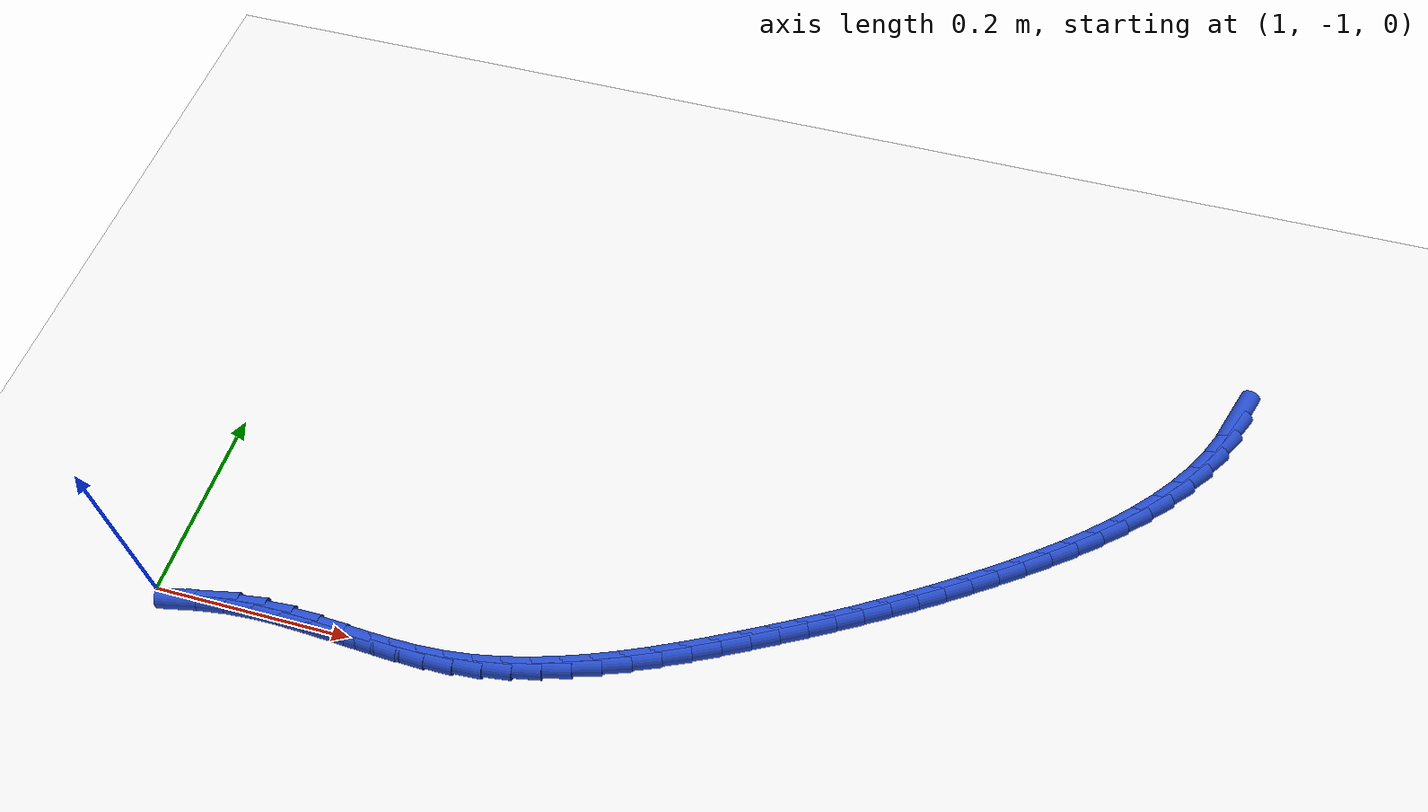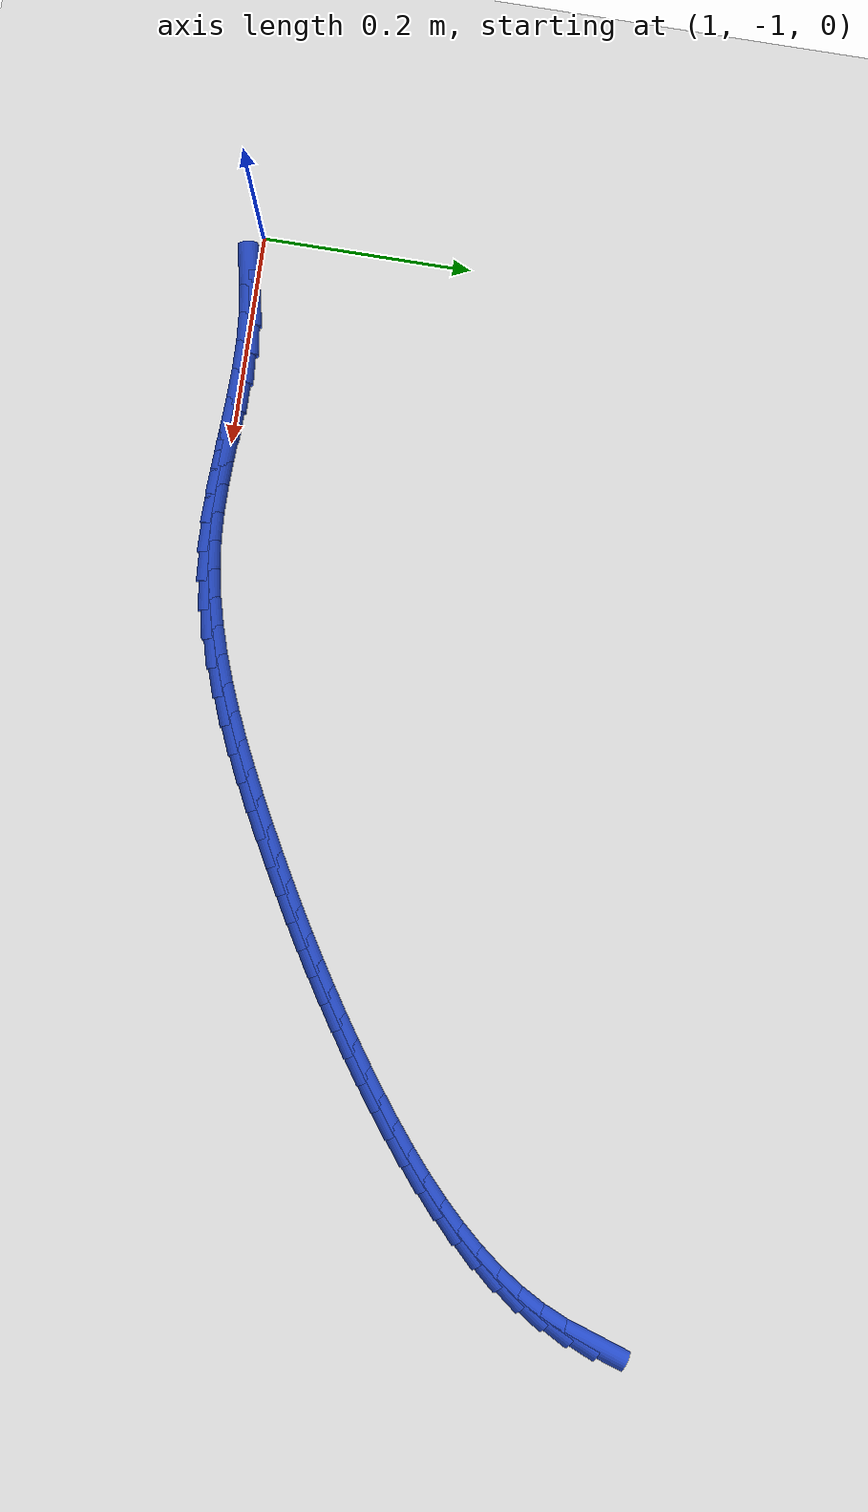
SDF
<sdf version="1.6">
 <world name="default">
  <model name="ground_plane">
   <static>1</static>
   <link name="link">
    <collision name="collision">
     <geometry><plane><normal>0 0 1</normal><size>100 100</size></plane></geometry>
     <surface><friction><ode><mu>100</mu><mu2>50</mu2></ode></friction></surface>
    </collision>
    <visual name="visual">
     <cast_shadows>0</cast_shadows>
     <geometry><plane><normal>0 0 1</normal><size>100 100</size></plane></geometry>
     <material>
      <script><uri>file://media/materials/scripts/gazebo.material</uri><name>Gazebo/WhiteGlow</name></script>
     </material>
    </visual>
   </link>
  </model>
  <model name="line">
   <link name="link_140">
    <pose>1.9844193740953977 -0.5363808683086717 0.01 0 1.57 1.247853046564276</pose>
    <collision name="collision">
     <geometry><cylinder><radius>0.01</radius><length>0.08</length></cylinder></geometry>
    </collision>
    <visual name="visual">
     <material>
      <script><name>Gazebo/Blue</name><uri>file://media/materials/scripts/gazebo.material</uri></script>
     </material>
     <geometry><cylinder><radius>0.01</radius><length>0.08</length></cylinder></geometry>
    </visual>
   </link>
   <link name="link_141">
    <pose>1.9759654528949553 -0.5616421592691562 0.01 0 1.57 1.1464075430764746</pose>
    <collision name="collision">
     <geometry><cylinder><radius>0.01</radius><length>0.08</length></cylinder></geometry>
    </collision>
    <visual name="visual">
     <material>
      <script><name>Gazebo/Blue</name><uri>file://media/materials/scripts/gazebo.material</uri></script>
     </material>
     <geometry><cylinder><radius>0.01</radius><length>0.08</length></cylinder></geometry>
    </visual>
   </link>
   <link name="link_142">
    <pose>1.9649769003641828 -0.5859613511822196 0.01 0 1.57 1.0543955089299613</pose>
    <collision name="collision">
     <geometry><cylinder><radius>0.01</radius><length>0.08</length></cylinder></geometry>
    </collision>
    <visual name="visual">
     <material>
      <script><name>Gazebo/Blue</name><uri>file://media/materials/scripts/gazebo.material</uri></script>
     </material>
     <geometry><cylinder><radius>0.01</radius><length>0.08</length></cylinder></geometry>
    </visual>
   </link>
   <link name="link_143">
    <pose>1.9516878591804538 -0.6093660986796341 0.01 0 1.57 0.9725862222130492</pose>
    <collision name="collision">
     <geometry><cylinder><radius>0.01</radius><length>0.08</length></cylinder></geometry>
    </collision>
    <visual name="visual">
     <material>
      <script><name>Gazebo/Blue</name><uri>file://media/materials/scripts/gazebo.material</uri></script>
     </material>
     <geometry><cylinder><radius>0.01</radius><length>0.08</length></cylinder></geometry>
    </visual>
   </link>
   <link name="link_144">
    <pose>1.9363401759360779 -0.6318861346998123 0.01 0 1.57 0.9007893372426858</pose>
    <collision name="collision">
     <geometry><cylinder><radius>0.01</radius><length>0.08</length></cylinder></geometry>
    </collision>
    <visual name="visual">
     <material>
      <script><name>Gazebo/Blue</name><uri>file://media/materials/scripts/gazebo.material</uri></script>
     </material>
     <geometry><cylinder><radius>0.01</radius><length>0.08</length></cylinder></geometry>
    </visual>
   </link>
   <link name="link_145">
    <pose>1.9191756972233633 -0.6535511921811662 0.01 0 1.57 0.8384162594598001</pose>
    <collision name="collision">
     <geometry><cylinder><radius>0.01</radius><length>0.08</length></cylinder></geometry>
    </collision>
    <visual name="visual">
     <material>
      <script><name>Gazebo/Blue</name><uri>file://media/materials/scripts/gazebo.material</uri></script>
     </material>
     <geometry><cylinder><radius>0.01</radius><length>0.08</length></cylinder></geometry>
    </visual>
   </link>
   <link name="link_146">
    <pose>1.9004362696346202 -0.6743910040621082 0.01 0 1.57 0.7846944525234584</pose>
    <collision name="collision">
     <geometry><cylinder><radius>0.01</radius><length>0.08</length></cylinder></geometry>
    </collision>
    <visual name="visual">
     <material>
      <script><name>Gazebo/Blue</name><uri>file://media/materials/scripts/gazebo.material</uri></script>
     </material>
     <geometry><cylinder><radius>0.01</radius><length>0.08</length></cylinder></geometry>
    </visual>
   </link>
   <link name="link_147">
    <pose>1.880363739762156 -0.6944353032810507 0.01 0 1.57 0.7388156988429132</pose>
    <collision name="collision">
     <geometry><cylinder><radius>0.01</radius><length>0.08</length></cylinder></geometry>
    </collision>
    <visual name="visual">
     <material>
      <script><name>Gazebo/Blue</name><uri>file://media/materials/scripts/gazebo.material</uri></script>
     </material>
     <geometry><cylinder><radius>0.01</radius><length>0.08</length></cylinder></geometry>
    </visual>
   </link>
   <link name="link_148">
    <pose>1.8591999541982818 -0.7137138227764052 0.01 0 1.57 0.7000269623577939</pose>
    <collision name="collision">
     <geometry><cylinder><radius>0.01</radius><length>0.08</length></cylinder></geometry>
    </collision>
    <visual name="visual">
     <material>
      <script><name>Gazebo/Blue</name><uri>file://media/materials/scripts/gazebo.material</uri></script>
     </material>
     <geometry><cylinder><radius>0.01</radius><length>0.08</length></cylinder></geometry>
    </visual>
   </link>
   <link name="link_149">
    <pose>1.8371867595353055 -0.7322562954865841 0.01 0 1.57 0.6676809049704147</pose>
    <collision name="collision">
     <geometry><cylinder><radius>0.01</radius><length>0.08</length></cylinder></geometry>
    </collision>
    <visual name="visual">
     <material>
      <script><name>Gazebo/Blue</name><uri>file://media/materials/scripts/gazebo.material</uri></script>
     </material>
     <geometry><cylinder><radius>0.01</radius><length>0.08</length></cylinder></geometry>
    </visual>
   </link>
   <link name="link_150">
    <pose>1.8145660023655372 -0.7500924543499998 0.01 0 1.57 0.641262254110601</pose>
    <collision name="collision">
     <geometry><cylinder><radius>0.01</radius><length>0.08</length></cylinder></geometry>
    </collision>
    <visual name="visual">
     <material>
      <script><name>Gazebo/Blue</name><uri>file://media/materials/scripts/gazebo.material</uri></script>
     </material>
     <geometry><cylinder><radius>0.01</radius><length>0.08</length></cylinder></geometry>
    </visual>
   </link>
   <link name="link_151">
    <pose>1.7915795292812846 -0.7672520323050646 0.01 0 1.57 0.6203828964482498</pose>
    <collision name="collision">
     <geometry><cylinder><radius>0.01</radius><length>0.08</length></cylinder></geometry>
    </collision>
    <visual name="visual">
     <material>
      <script><name>Gazebo/Blue</name><uri>file://media/materials/scripts/gazebo.material</uri></script>
     </material>
     <geometry><cylinder><radius>0.01</radius><length>0.08</length></cylinder></geometry>
    </visual>
   </link>
   <link name="link_152">
    <pose>1.7684680976688198 -0.7837648546089216 0.01 0 1.57 0.6031280354702332</pose>
    <collision name="collision">
     <geometry><cylinder><radius>0.01</radius><length>0.08</length></cylinder></geometry>
    </collision>
    <visual name="visual">
     <material>
      <script><name>Gazebo/Blue</name><uri>file://media/materials/scripts/gazebo.material</uri></script>
     </material>
     <geometry><cylinder><radius>0.01</radius><length>0.08</length></cylinder></geometry>
    </visual>
   </link>
   <link name="link_153">
    <pose>1.7453765872867597 -0.7996688728976026 0.01 0 1.57 0.5865046392513358</pose>
    <collision name="collision">
     <geometry><cylinder><radius>0.01</radius><length>0.08</length></cylinder></geometry>
    </collision>
    <visual name="visual">
     <material>
      <script><name>Gazebo/Blue</name><uri>file://media/materials/scripts/gazebo.material</uri></script>
     </material>
     <geometry><cylinder><radius>0.01</radius><length>0.08</length></cylinder></geometry>
    </visual>
   </link>
   <link name="link_154">
    <pose>1.7222804063781842 -0.815016402843668 0.01 0 1.57 0.570338069232338</pose>
    <collision name="collision">
     <geometry><cylinder><radius>0.01</radius><length>0.08</length></cylinder></geometry>
    </collision>
    <visual name="visual">
     <material>
      <script><name>Gazebo/Blue</name><uri>file://media/materials/scripts/gazebo.material</uri></script>
     </material>
     <geometry><cylinder><radius>0.01</radius><length>0.08</length></cylinder></geometry>
    </visual>
   </link>
   <link name="link_155">
    <pose>1.6991376409079415 -0.8298612283182524 0.01 0 1.57 0.5547631524358978</pose>
    <collision name="collision">
     <geometry><cylinder><radius>0.01</radius><length>0.08</length></cylinder></geometry>
    </collision>
    <visual name="visual">
     <material>
      <script><name>Gazebo/Blue</name><uri>file://media/materials/scripts/gazebo.material</uri></script>
     </material>
     <geometry><cylinder><radius>0.01</radius><length>0.08</length></cylinder></geometry>
    </visual>
   </link>
   <link name="link_156">
    <pose>1.675906376840879 -0.8442571331924879 0.01 0 1.57 0.5399082666377482</pose>
    <collision name="collision">
     <geometry><cylinder><radius>0.01</radius><length>0.08</length></cylinder></geometry>
    </collision>
    <visual name="visual">
     <material>
      <script><name>Gazebo/Blue</name><uri>file://media/materials/scripts/gazebo.material</uri></script>
     </material>
     <geometry><cylinder><radius>0.01</radius><length>0.08</length></cylinder></geometry>
    </visual>
   </link>
   <link name="link_157">
    <pose>1.6525447001418452 -0.8582579013375088 0.01 0 1.57 0.5258919443402926</pose>
    <collision name="collision">
     <geometry><cylinder><radius>0.01</radius><length>0.08</length></cylinder></geometry>
    </collision>
    <visual name="visual">
     <material>
      <script><name>Gazebo/Blue</name><uri>file://media/materials/scripts/gazebo.material</uri></script>
     </material>
     <geometry><cylinder><radius>0.01</radius><length>0.08</length></cylinder></geometry>
    </visual>
   </link>
   <link name="link_158">
    <pose>1.6290106967756879 -0.8719173166244493 0.01 0 1.57 0.5128198744595768</pose>
    <collision name="collision">
     <geometry><cylinder><radius>0.01</radius><length>0.08</length></cylinder></geometry>
    </collision>
    <visual name="visual">
     <material>
      <script><name>Gazebo/Blue</name><uri>file://media/materials/scripts/gazebo.material</uri></script>
     </material>
     <geometry><cylinder><radius>0.01</radius><length>0.08</length></cylinder></geometry>
    </visual>
   </link>
   <link name="link_159">
    <pose>1.6052624527072554 -0.8852891629244428 0.01 0 1.57 0.5007824557941073</pose>
    <collision name="collision">
     <geometry><cylinder><radius>0.01</radius><length>0.08</length></cylinder></geometry>
    </collision>
    <visual name="visual">
     <material>
      <script><name>Gazebo/Blue</name><uri>file://media/materials/scripts/gazebo.material</uri></script>
     </material>
     <geometry><cylinder><radius>0.01</radius><length>0.08</length></cylinder></geometry>
    </visual>
   </link>
   <link name="link_160">
    <pose>1.5812580539013945 -0.8984272241086229 0.01 0 1.57 0.4898519513415623</pose>
    <collision name="collision">
     <geometry><cylinder><radius>0.01</radius><length>0.08</length></cylinder></geometry>
    </collision>
    <visual name="visual">
     <material>
      <script><name>Gazebo/Blue</name><uri>file://media/materials/scripts/gazebo.material</uri></script>
     </material>
     <geometry><cylinder><radius>0.01</radius><length>0.08</length></cylinder></geometry>
    </visual>
   </link>
   <link name="link_161">
    <pose>1.5569555951799494 -0.9113852463170204 0.01 0 1.57 0.4786414927997893</pose>
    <collision name="collision">
     <geometry><cylinder><radius>0.01</radius><length>0.08</length></cylinder></geometry>
    </collision>
    <visual name="visual">
     <material>
      <script><name>Gazebo/Blue</name><uri>file://media/materials/scripts/gazebo.material</uri></script>
     </material>
     <geometry><cylinder><radius>0.01</radius><length>0.08</length></cylinder></geometry>
    </visual>
   </link>
   <link name="link_162">
    <pose>1.5323252362703168 -0.9241655787797384 0.01 0 1.57 0.46287052029988474</pose>
    <collision name="collision">
     <geometry><cylinder><radius>0.01</radius><length>0.08</length></cylinder></geometry>
    </collision>
    <visual name="visual">
     <material>
      <script><name>Gazebo/Blue</name><uri>file://media/materials/scripts/gazebo.material</uri></script>
     </material>
     <geometry><cylinder><radius>0.01</radius><length>0.08</length></cylinder></geometry>
    </visual>
   </link>
   <link name="link_163">
    <pose>1.5073730861464636 -0.9366174257080864 0.01 0 1.57 0.44167411320365274</pose>
    <collision name="collision">
     <geometry><cylinder><radius>0.01</radius><length>0.08</length></cylinder></geometry>
    </collision>
    <visual name="visual">
     <material>
      <script><name>Gazebo/Blue</name><uri>file://media/materials/scripts/gazebo.material</uri></script>
     </material>
     <geometry><cylinder><radius>0.01</radius><length>0.08</length></cylinder></geometry>
    </visual>
   </link>
   <link name="link_164">
    <pose>1.4821119195765036 -0.9485615948025338 0.01 0 1.57 0.4149014693642976</pose>
    <collision name="collision">
     <geometry><cylinder><radius>0.01</radius><length>0.08</length></cylinder></geometry>
    </collision>
    <visual name="visual">
     <material>
      <script><name>Gazebo/Blue</name><uri>file://media/materials/scripts/gazebo.material</uri></script>
     </material>
     <geometry><cylinder><radius>0.01</radius><length>0.08</length></cylinder></geometry>
    </visual>
   </link>
   <link name="link_165">
    <pose>1.4565545113285492 -0.9598188937635477 0.01 0 1.57 0.38233608431960625</pose>
    <collision name="collision">
     <geometry><cylinder><radius>0.01</radius><length>0.08</length></cylinder></geometry>
    </collision>
    <visual name="visual">
     <material>
      <script><name>Gazebo/Blue</name><uri>file://media/materials/scripts/gazebo.material</uri></script>
     </material>
     <geometry><cylinder><radius>0.01</radius><length>0.08</length></cylinder></geometry>
    </visual>
   </link>
   <link name="link_166">
    <pose>1.430713636170714 -0.9702101302915966 0.01 0 1.57 0.3437174020864706</pose>
    <collision name="collision">
     <geometry><cylinder><radius>0.01</radius><length>0.08</length></cylinder></geometry>
    </collision>
    <visual name="visual">
     <material>
      <script><name>Gazebo/Blue</name><uri>file://media/materials/scripts/gazebo.material</uri></script>
     </material>
     <geometry><cylinder><radius>0.01</radius><length>0.08</length></cylinder></geometry>
    </visual>
   </link>
   <link name="link_167">
    <pose>1.404602068871112 -0.9795561120871492 0.01 0 1.57 0.2987707570612694</pose>
    <collision name="collision">
     <geometry><cylinder><radius>0.01</radius><length>0.08</length></cylinder></geometry>
    </collision>
    <visual name="visual">
     <material>
      <script><name>Gazebo/Blue</name><uri>file://media/materials/scripts/gazebo.material</uri></script>
     </material>
     <geometry><cylinder><radius>0.01</radius><length>0.08</length></cylinder></geometry>
    </visual>
   </link>
   <link name="link_168">
    <pose>1.378232584197856 -0.9876776468506729 0.01 0 1.57 0.2472490480943092</pose>
    <collision name="collision">
     <geometry><cylinder><radius>0.01</radius><length>0.08</length></cylinder></geometry>
    </collision>
    <visual name="visual">
     <material>
      <script><name>Gazebo/Blue</name><uri>file://media/materials/scripts/gazebo.material</uri></script>
     </material>
     <geometry><cylinder><radius>0.01</radius><length>0.08</length></cylinder></geometry>
    </visual>
   </link>
   <link name="link_169">
    <pose>1.3516179569190598 -0.9943955422826362 0.01 0 1.57 0.18898881393209568</pose>
    <collision name="collision">
     <geometry><cylinder><radius>0.01</radius><length>0.08</length></cylinder></geometry>
    </collision>
    <visual name="visual">
     <material>
      <script><name>Gazebo/Blue</name><uri>file://media/materials/scripts/gazebo.material</uri></script>
     </material>
     <geometry><cylinder><radius>0.01</radius><length>0.08</length></cylinder></geometry>
    </visual>
   </link>
   <link name="link_170">
    <pose>1.324770961802836 -0.9995306060835072 0.01 0 1.57 0.12398088326742146</pose>
    <collision name="collision">
     <geometry><cylinder><radius>0.01</radius><length>0.08</length></cylinder></geometry>
    </collision>
    <visual name="visual">
     <material>
      <script><name>Gazebo/Blue</name><uri>file://media/materials/scripts/gazebo.material</uri></script>
     </material>
     <geometry><cylinder><radius>0.01</radius><length>0.08</length></cylinder></geometry>
    </visual>
   </link>
   <link name="link_171">
    <pose>1.2977043736172988 -1.0029036459537535 0.01 0 1.57 0.054648824464818224</pose>
    <collision name="collision">
     <geometry><cylinder><radius>0.01</radius><length>0.08</length></cylinder></geometry>
    </collision>
    <visual name="visual">
     <material>
      <script><name>Gazebo/Blue</name><uri>file://media/materials/scripts/gazebo.material</uri></script>
     </material>
     <geometry><cylinder><radius>0.01</radius><length>0.08</length></cylinder></geometry>
    </visual>
   </link>
   <link name="link_172">
    <pose>1.2704343896669013 -1.00439540385759 0.01 0 1.57 -0.0021443209661195796</pose>
    <collision name="collision">
     <geometry><cylinder><radius>0.01</radius><length>0.08</length></cylinder></geometry>
    </collision>
    <visual name="visual">
     <material>
      <script><name>Gazebo/Blue</name><uri>file://media/materials/scripts/gazebo.material</uri></script>
     </material>
     <geometry><cylinder><radius>0.01</radius><length>0.08</length></cylinder></geometry>
    </visual>
   </link>
   <link name="link_173">
    <pose>1.2430029021537703 -1.004336581853627 0.01 0 1.57 -0.03898798343305836</pose>
    <collision name="collision">
     <geometry><cylinder><radius>0.01</radius><length>0.08</length></cylinder></geometry>
    </collision>
    <visual name="visual">
     <material>
      <script><name>Gazebo/Blue</name><uri>file://media/materials/scripts/gazebo.material</uri></script>
     </material>
     <geometry><cylinder><radius>0.01</radius><length>0.08</length></cylinder></geometry>
    </visual>
   </link>
   <link name="link_174">
    <pose>1.2154634783003453 -1.0032623308878443 0.01 0 1.57 -0.05623977427457119</pose>
    <collision name="collision">
     <geometry><cylinder><radius>0.01</radius><length>0.08</length></cylinder></geometry>
    </collision>
    <visual name="visual">
     <material>
      <script><name>Gazebo/Blue</name><uri>file://media/materials/scripts/gazebo.material</uri></script>
     </material>
     <geometry><cylinder><radius>0.01</radius><length>0.08</length></cylinder></geometry>
    </visual>
   </link>
   <link name="link_175">
    <pose>1.1878697438829897 -1.0017088272821797 0.01 0 1.57 -0.054181794482243334</pose>
    <collision name="collision">
     <geometry><cylinder><radius>0.01</radius><length>0.08</length></cylinder></geometry>
    </collision>
    <visual name="visual">
     <material>
      <script><name>Gazebo/Blue</name><uri>file://media/materials/scripts/gazebo.material</uri></script>
     </material>
     <geometry><cylinder><radius>0.01</radius><length>0.08</length></cylinder></geometry>
    </visual>
   </link>
   <link name="link_176">
    <pose>1.1602753246780708 -1.0002122473585737 0.01 0 1.57 -0.03279257692673447</pose>
    <collision name="collision">
     <geometry><cylinder><radius>0.01</radius><length>0.08</length></cylinder></geometry>
    </collision>
    <visual name="visual">
     <material>
      <script><name>Gazebo/Blue</name><uri>file://media/materials/scripts/gazebo.material</uri></script>
     </material>
     <geometry><cylinder><radius>0.01</radius><length>0.08</length></cylinder></geometry>
    </visual>
   </link>
   <link name="link_177">
    <pose>1.1327338464619507 -0.9993087674389649 0.01 0 1.57 0.008230072426915713</pose>
    <collision name="collision">
     <geometry><cylinder><radius>0.01</radius><length>0.08</length></cylinder></geometry>
    </collision>
    <visual name="visual">
     <material>
      <script><name>Gazebo/Blue</name><uri>file://media/materials/scripts/gazebo.material</uri></script>
     </material>
     <geometry><cylinder><radius>0.01</radius><length>0.08</length></cylinder></geometry>
    </visual>
   </link>
   <link name="link_178">
    <pose>1.1052989350109976 -0.9995345638452935 0.01 0 1.57 0.06922947663593464</pose>
    <collision name="collision">
     <geometry><cylinder><radius>0.01</radius><length>0.08</length></cylinder></geometry>
    </collision>
    <visual name="visual">
     <material>
      <script><name>Gazebo/Blue</name><uri>file://media/materials/scripts/gazebo.material</uri></script>
     </material>
     <geometry><cylinder><radius>0.01</radius><length>0.08</length></cylinder></geometry>
    </visual>
   </link>
   <link name="link_179">
    <pose>1.0780242149121018 -1.0014258007989496 0.01 0 1.57 0.1425566686209833</pose>
    <collision name="collision">
     <geometry><cylinder><radius>0.01</radius><length>0.08</length></cylinder></geometry>
    </collision>
    <visual name="visual">
     <material>
      <script><name>Gazebo/Blue</name><uri>file://media/materials/scripts/gazebo.material</uri></script>
     </material>
     <geometry><cylinder><radius>0.01</radius><length>0.08</length></cylinder></geometry>
    </visual>
   </link>
   <link name="link_180">
    <pose>1.0509430731503508 -1.0053127647105238 0.01 0 1.57 0.20090117362803186</pose>
    <collision name="collision">
     <geometry><cylinder><radius>0.01</radius><length>0.08</length></cylinder></geometry>
    </collision>
    <visual name="visual">
     <material>
      <script><name>Gazebo/Blue</name><uri>file://media/materials/scripts/gazebo.material</uri></script>
     </material>
     <geometry><cylinder><radius>0.01</radius><length>0.08</length></cylinder></geometry>
    </visual>
   </link>
  </model>
 </world>
</sdf>
